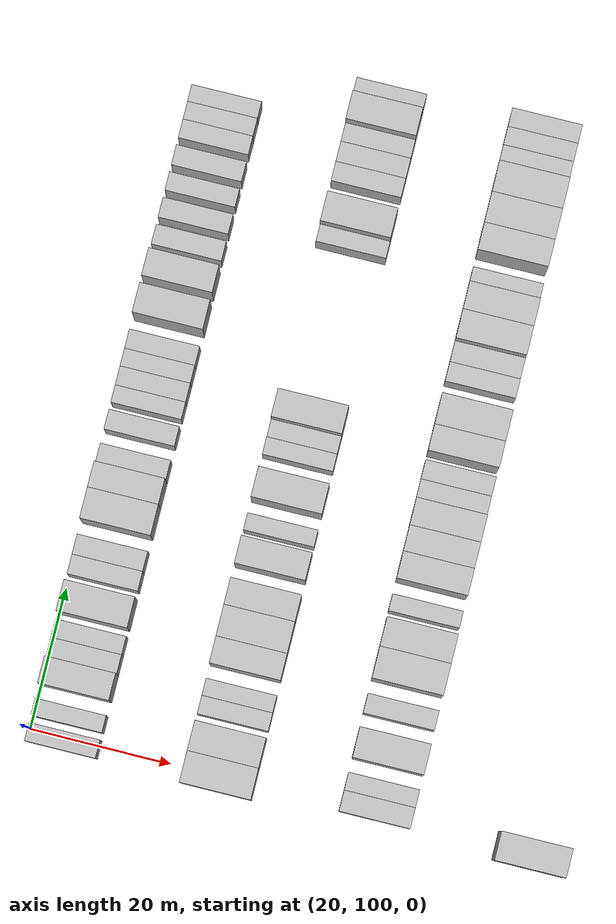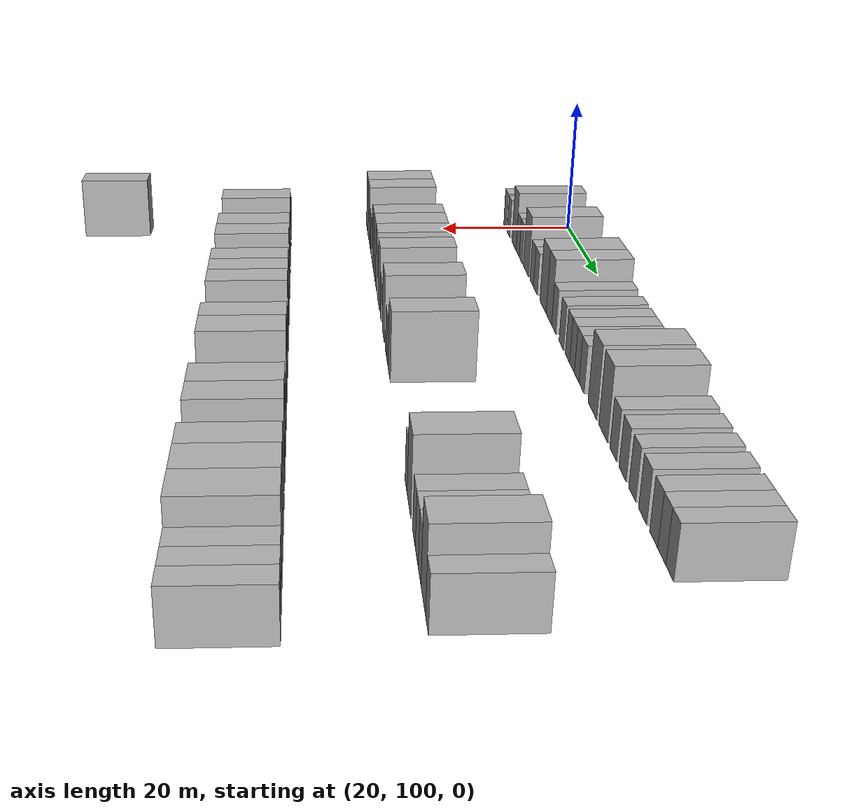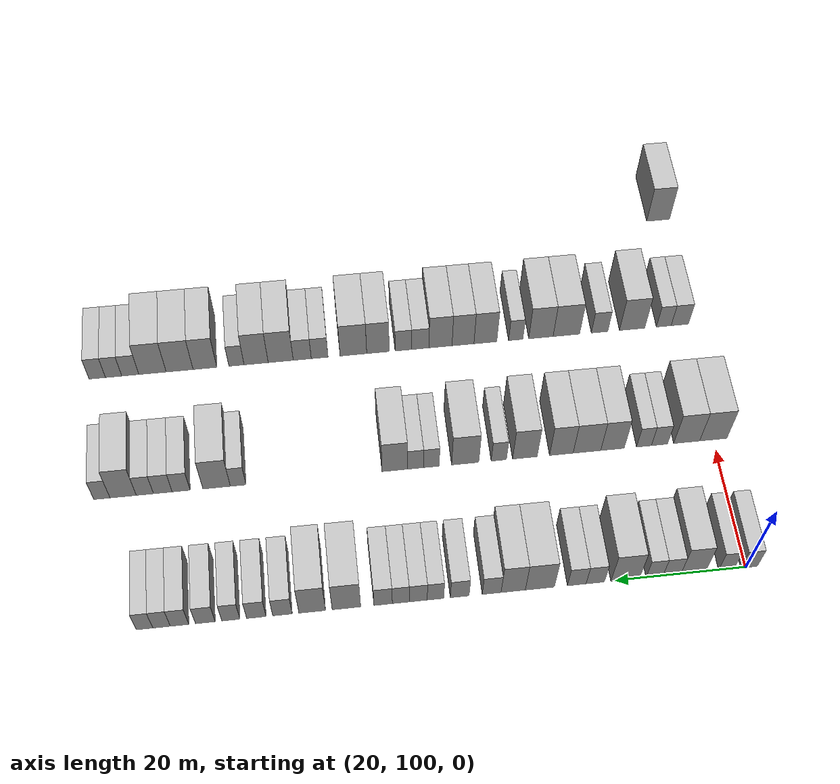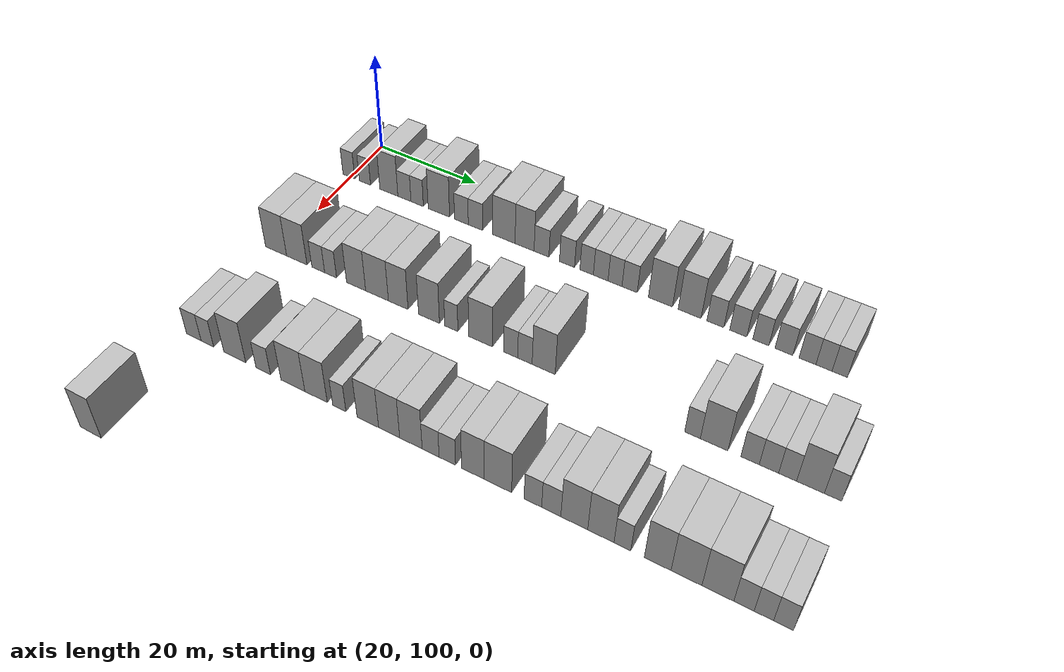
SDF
<sdf version="1.6">
 <world name="default">
  <model name="building_115">
   <static>1</static>
   <pose>25.0000 99.4900 0 0.000000 0.000000 0.000000</pose>
   <link name="link">
    <pose>0 0 3.00 0 0 0</pose>
    <collision name="collision"><geometry><box><size>10.0000 2.5770 6.0000</size></box></geometry></collision>
    <visual name="visual">
     <cast_shadows>0</cast_shadows>
     <geometry><box><size>10.0000 2.5770 6.0000</size></box></geometry>
     <material>
      <script>
       <uri>model://HANNAS_wall/materials/scripts</uri>
       <uri>model://HANNAS_wall/materials/textures</uri>
       <name>vrc/HANNAS_wall</name>
      </script>
     </material>
    </visual>
   </link>
  </model>
  <model name="building_116">
   <static>1</static>
   <pose>25.0000 102.9895 0 0.000000 0.000000 0.000000</pose>
   <link name="link">
    <pose>0 0 3.00 0 0 0</pose>
    <collision name="collision"><geometry><box><size>10.0000 2.4219 6.0000</size></box></geometry></collision>
    <visual name="visual">
     <cast_shadows>0</cast_shadows>
     <geometry><box><size>10.0000 2.4219 6.0000</size></box></geometry>
     <material>
      <script>
       <uri>model://HANNAS_wall/materials/scripts</uri>
       <uri>model://HANNAS_wall/materials/textures</uri>
       <name>vrc/HANNAS_wall</name>
      </script>
     </material>
    </visual>
   </link>
  </model>
  <model name="building_117">
   <static>1</static>
   <pose>25.0000 108.1114 0 0.000000 0.000000 0.000000</pose>
   <link name="link">
    <pose>0 0 4.50 0 0 0</pose>
    <collision name="collision"><geometry><box><size>10.0000 3.8219 9.0000</size></box></geometry></collision>
    <visual name="visual">
     <cast_shadows>0</cast_shadows>
     <geometry><box><size>10.0000 3.8219 9.0000</size></box></geometry>
     <material>
      <script>
       <uri>model://HANNAS_wall/materials/scripts</uri>
       <uri>model://HANNAS_wall/materials/textures</uri>
       <name>vrc/HANNAS_wall</name>
      </script>
     </material>
    </visual>
   </link>
  </model>
  <model name="building_118">
   <static>1</static>
   <pose>25.0000 111.3987 0 0.000000 0.000000 0.000000</pose>
   <link name="link">
    <pose>0 0 3.00 0 0 0</pose>
    <collision name="collision"><geometry><box><size>10.0000 2.7526 6.0000</size></box></geometry></collision>
    <visual name="visual">
     <cast_shadows>0</cast_shadows>
     <geometry><box><size>10.0000 2.7526 6.0000</size></box></geometry>
     <material>
      <script>
       <uri>model://HANNAS_wall/materials/scripts</uri>
       <uri>model://HANNAS_wall/materials/textures</uri>
       <name>vrc/HANNAS_wall</name>
      </script>
     </material>
    </visual>
   </link>
  </model>
  <model name="building_119">
   <static>1</static>
   <pose>25.0000 114.0703 0 0.000000 0.000000 0.000000</pose>
   <link name="link">
    <pose>0 0 3.00 0 0 0</pose>
    <collision name="collision"><geometry><box><size>10.0000 2.5907 6.0000</size></box></geometry></collision>
    <visual name="visual">
     <cast_shadows>0</cast_shadows>
     <geometry><box><size>10.0000 2.5907 6.0000</size></box></geometry>
     <material>
      <script>
       <uri>model://HANNAS_wall/materials/scripts</uri>
       <uri>model://HANNAS_wall/materials/textures</uri>
       <name>vrc/HANNAS_wall</name>
      </script>
     </material>
    </visual>
   </link>
  </model>
  <model name="building_120">
   <static>1</static>
   <pose>25.0000 118.5576 0 0.000000 0.000000 0.000000</pose>
   <link name="link">
    <pose>0 0 4.50 0 0 0</pose>
    <collision name="collision"><geometry><box><size>10.0000 4.3837 9.0000</size></box></geometry></collision>
    <visual name="visual">
     <cast_shadows>0</cast_shadows>
     <geometry><box><size>10.0000 4.3837 9.0000</size></box></geometry>
     <material>
      <script>
       <uri>model://HANNAS_wall/materials/scripts</uri>
       <uri>model://HANNAS_wall/materials/textures</uri>
       <name>vrc/HANNAS_wall</name>
      </script>
     </material>
    </visual>
   </link>
  </model>
  <model name="building_121">
   <static>1</static>
   <pose>25.0000 123.1432 0 0.000000 0.000000 0.000000</pose>
   <link name="link">
    <pose>0 0 3.00 0 0 0</pose>
    <collision name="collision"><geometry><box><size>10.0000 2.7875 6.0000</size></box></geometry></collision>
    <visual name="visual">
     <cast_shadows>0</cast_shadows>
     <geometry><box><size>10.0000 2.7875 6.0000</size></box></geometry>
     <material>
      <script>
       <uri>model://HANNAS_wall/materials/scripts</uri>
       <uri>model://HANNAS_wall/materials/textures</uri>
       <name>vrc/HANNAS_wall</name>
      </script>
     </material>
    </visual>
   </link>
  </model>
  <model name="building_122">
   <static>1</static>
   <pose>25.0000 125.9622 0 0.000000 0.000000 0.000000</pose>
   <link name="link">
    <pose>0 0 3.00 0 0 0</pose>
    <collision name="collision"><geometry><box><size>10.0000 2.8505 6.0000</size></box></geometry></collision>
    <visual name="visual">
     <cast_shadows>0</cast_shadows>
     <geometry><box><size>10.0000 2.8505 6.0000</size></box></geometry>
     <material>
      <script>
       <uri>model://HANNAS_wall/materials/scripts</uri>
       <uri>model://HANNAS_wall/materials/textures</uri>
       <name>vrc/HANNAS_wall</name>
      </script>
     </material>
    </visual>
   </link>
  </model>
  <model name="building_123">
   <static>1</static>
   <pose>25.0000 131.5887 0 0.000000 0.000000 0.000000</pose>
   <link name="link">
    <pose>0 0 4.50 0 0 0</pose>
    <collision name="collision"><geometry><box><size>10.0000 4.4026 9.0000</size></box></geometry></collision>
    <visual name="visual">
     <cast_shadows>0</cast_shadows>
     <geometry><box><size>10.0000 4.4026 9.0000</size></box></geometry>
     <material>
      <script>
       <uri>model://HANNAS_wall/materials/scripts</uri>
       <uri>model://HANNAS_wall/materials/textures</uri>
       <name>vrc/HANNAS_wall</name>
      </script>
     </material>
    </visual>
   </link>
  </model>
  <model name="building_124">
   <static>1</static>
   <pose>25.0000 135.6334 0 0.000000 0.000000 0.000000</pose>
   <link name="link">
    <pose>0 0 4.50 0 0 0</pose>
    <collision name="collision"><geometry><box><size>10.0000 3.6868 9.0000</size></box></geometry></collision>
    <visual name="visual">
     <cast_shadows>0</cast_shadows>
     <geometry><box><size>10.0000 3.6868 9.0000</size></box></geometry>
     <material>
      <script>
       <uri>model://HANNAS_wall/materials/scripts</uri>
       <uri>model://HANNAS_wall/materials/textures</uri>
       <name>vrc/HANNAS_wall</name>
      </script>
     </material>
    </visual>
   </link>
  </model>
  <model name="building_125">
   <static>1</static>
   <pose>25.0000 138.8956 0 0.000000 0.000000 0.000000</pose>
   <link name="link">
    <pose>0 0 3.00 0 0 0</pose>
    <collision name="collision"><geometry><box><size>10.0000 2.8374 6.0000</size></box></geometry></collision>
    <visual name="visual">
     <cast_shadows>0</cast_shadows>
     <geometry><box><size>10.0000 2.8374 6.0000</size></box></geometry>
     <material>
      <script>
       <uri>model://HANNAS_wall/materials/scripts</uri>
       <uri>model://HANNAS_wall/materials/textures</uri>
       <name>vrc/HANNAS_wall</name>
      </script>
     </material>
    </visual>
   </link>
  </model>
  <model name="building_126">
   <static>1</static>
   <pose>25.0000 143.7301 0 0.000000 0.000000 0.000000</pose>
   <link name="link">
    <pose>0 0 3.00 0 0 0</pose>
    <collision name="collision"><geometry><box><size>10.0000 2.8317 6.0000</size></box></geometry></collision>
    <visual name="visual">
     <cast_shadows>0</cast_shadows>
     <geometry><box><size>10.0000 2.8317 6.0000</size></box></geometry>
     <material>
      <script>
       <uri>model://HANNAS_wall/materials/scripts</uri>
       <uri>model://HANNAS_wall/materials/textures</uri>
       <name>vrc/HANNAS_wall</name>
      </script>
     </material>
    </visual>
   </link>
  </model>
  <model name="building_127">
   <static>1</static>
   <pose>25.0000 147.3923 0 0.000000 0.000000 0.000000</pose>
   <link name="link">
    <pose>0 0 3.00 0 0 0</pose>
    <collision name="collision"><geometry><box><size>10.0000 2.4927 6.0000</size></box></geometry></collision>
    <visual name="visual">
     <cast_shadows>0</cast_shadows>
     <geometry><box><size>10.0000 2.4927 6.0000</size></box></geometry>
     <material>
      <script>
       <uri>model://HANNAS_wall/materials/scripts</uri>
       <uri>model://HANNAS_wall/materials/textures</uri>
       <name>vrc/HANNAS_wall</name>
      </script>
     </material>
    </visual>
   </link>
  </model>
  <model name="building_128">
   <static>1</static>
   <pose>25.0000 149.9853 0 0.000000 0.000000 0.000000</pose>
   <link name="link">
    <pose>0 0 3.00 0 0 0</pose>
    <collision name="collision"><geometry><box><size>10.0000 2.6934 6.0000</size></box></geometry></collision>
    <visual name="visual">
     <cast_shadows>0</cast_shadows>
     <geometry><box><size>10.0000 2.6934 6.0000</size></box></geometry>
     <material>
      <script>
       <uri>model://HANNAS_wall/materials/scripts</uri>
       <uri>model://HANNAS_wall/materials/textures</uri>
       <name>vrc/HANNAS_wall</name>
      </script>
     </material>
    </visual>
   </link>
  </model>
  <model name="building_129">
   <static>1</static>
   <pose>25.0000 152.6052 0 0.000000 0.000000 0.000000</pose>
   <link name="link">
    <pose>0 0 3.00 0 0 0</pose>
    <collision name="collision"><geometry><box><size>10.0000 2.5463 6.0000</size></box></geometry></collision>
    <visual name="visual">
     <cast_shadows>0</cast_shadows>
     <geometry><box><size>10.0000 2.5463 6.0000</size></box></geometry>
     <material>
      <script>
       <uri>model://HANNAS_wall/materials/scripts</uri>
       <uri>model://HANNAS_wall/materials/textures</uri>
       <name>vrc/HANNAS_wall</name>
      </script>
     </material>
    </visual>
   </link>
  </model>
  <model name="building_130">
   <static>1</static>
   <pose>25.0000 155.2525 0 0.000000 0.000000 0.000000</pose>
   <link name="link">
    <pose>0 0 3.00 0 0 0</pose>
    <collision name="collision"><geometry><box><size>10.0000 2.7482 6.0000</size></box></geometry></collision>
    <visual name="visual">
     <cast_shadows>0</cast_shadows>
     <geometry><box><size>10.0000 2.7482 6.0000</size></box></geometry>
     <material>
      <script>
       <uri>model://HANNAS_wall/materials/scripts</uri>
       <uri>model://HANNAS_wall/materials/textures</uri>
       <name>vrc/HANNAS_wall</name>
      </script>
     </material>
    </visual>
   </link>
  </model>
  <model name="building_131">
   <static>1</static>
   <pose>25.0000 160.7545 0 0.000000 0.000000 0.000000</pose>
   <link name="link">
    <pose>0 0 4.50 0 0 0</pose>
    <collision name="collision"><geometry><box><size>10.0000 4.2560 9.0000</size></box></geometry></collision>
    <visual name="visual">
     <cast_shadows>0</cast_shadows>
     <geometry><box><size>10.0000 4.2560 9.0000</size></box></geometry>
     <material>
      <script>
       <uri>model://HANNAS_wall/materials/scripts</uri>
       <uri>model://HANNAS_wall/materials/textures</uri>
       <name>vrc/HANNAS_wall</name>
      </script>
     </material>
    </visual>
   </link>
  </model>
  <model name="building_132">
   <static>1</static>
   <pose>25.0000 165.8674 0 0.000000 0.000000 0.000000</pose>
   <link name="link">
    <pose>0 0 4.50 0 0 0</pose>
    <collision name="collision"><geometry><box><size>10.0000 3.9698 9.0000</size></box></geometry></collision>
    <visual name="visual">
     <cast_shadows>0</cast_shadows>
     <geometry><box><size>10.0000 3.9698 9.0000</size></box></geometry>
     <material>
      <script>
       <uri>model://HANNAS_wall/materials/scripts</uri>
       <uri>model://HANNAS_wall/materials/textures</uri>
       <name>vrc/HANNAS_wall</name>
      </script>
     </material>
    </visual>
   </link>
  </model>
  <model name="building_133">
   <static>1</static>
   <pose>25.0000 170.2946 0 0.000000 0.000000 0.000000</pose>
   <link name="link">
    <pose>0 0 3.00 0 0 0</pose>
    <collision name="collision"><geometry><box><size>10.0000 2.8846 6.0000</size></box></geometry></collision>
    <visual name="visual">
     <cast_shadows>0</cast_shadows>
     <geometry><box><size>10.0000 2.8846 6.0000</size></box></geometry>
     <material>
      <script>
       <uri>model://HANNAS_wall/materials/scripts</uri>
       <uri>model://HANNAS_wall/materials/textures</uri>
       <name>vrc/HANNAS_wall</name>
      </script>
     </material>
    </visual>
   </link>
  </model>
  <model name="building_134">
   <static>1</static>
   <pose>25.0000 174.1765 0 0.000000 0.000000 0.000000</pose>
   <link name="link">
    <pose>0 0 3.00 0 0 0</pose>
    <collision name="collision"><geometry><box><size>10.0000 2.8790 6.0000</size></box></geometry></collision>
    <visual name="visual">
     <cast_shadows>0</cast_shadows>
     <geometry><box><size>10.0000 2.8790 6.0000</size></box></geometry>
     <material>
      <script>
       <uri>model://HANNAS_wall/materials/scripts</uri>
       <uri>model://HANNAS_wall/materials/textures</uri>
       <name>vrc/HANNAS_wall</name>
      </script>
     </material>
    </visual>
   </link>
  </model>
  <model name="building_135">
   <static>1</static>
   <pose>25.0000 177.9508 0 0.000000 0.000000 0.000000</pose>
   <link name="link">
    <pose>0 0 3.00 0 0 0</pose>
    <collision name="collision"><geometry><box><size>10.0000 2.6697 6.0000</size></box></geometry></collision>
    <visual name="visual">
     <cast_shadows>0</cast_shadows>
     <geometry><box><size>10.0000 2.6697 6.0000</size></box></geometry>
     <material>
      <script>
       <uri>model://HANNAS_wall/materials/scripts</uri>
       <uri>model://HANNAS_wall/materials/textures</uri>
       <name>vrc/HANNAS_wall</name>
      </script>
     </material>
    </visual>
   </link>
  </model>
  <model name="building_136">
   <static>1</static>
   <pose>25.0000 181.7405 0 0.000000 0.000000 0.000000</pose>
   <link name="link">
    <pose>0 0 3.00 0 0 0</pose>
    <collision name="collision"><geometry><box><size>10.0000 2.9097 6.0000</size></box></geometry></collision>
    <visual name="visual">
     <cast_shadows>0</cast_shadows>
     <geometry><box><size>10.0000 2.9097 6.0000</size></box></geometry>
     <material>
      <script>
       <uri>model://HANNAS_wall/materials/scripts</uri>
       <uri>model://HANNAS_wall/materials/textures</uri>
       <name>vrc/HANNAS_wall</name>
      </script>
     </material>
    </visual>
   </link>
  </model>
  <model name="building_137">
   <static>1</static>
   <pose>25.0000 185.5532 0 0.000000 0.000000 0.000000</pose>
   <link name="link">
    <pose>0 0 3.00 0 0 0</pose>
    <collision name="collision"><geometry><box><size>10.0000 2.7157 6.0000</size></box></geometry></collision>
    <visual name="visual">
     <cast_shadows>0</cast_shadows>
     <geometry><box><size>10.0000 2.7157 6.0000</size></box></geometry>
     <material>
      <script>
       <uri>model://HANNAS_wall/materials/scripts</uri>
       <uri>model://HANNAS_wall/materials/textures</uri>
       <name>vrc/HANNAS_wall</name>
      </script>
     </material>
    </visual>
   </link>
  </model>
  <model name="building_138">
   <static>1</static>
   <pose>25.0000 188.1974 0 0.000000 0.000000 0.000000</pose>
   <link name="link">
    <pose>0 0 3.00 0 0 0</pose>
    <collision name="collision"><geometry><box><size>10.0000 2.5727 6.0000</size></box></geometry></collision>
    <visual name="visual">
     <cast_shadows>0</cast_shadows>
     <geometry><box><size>10.0000 2.5727 6.0000</size></box></geometry>
     <material>
      <script>
       <uri>model://HANNAS_wall/materials/scripts</uri>
       <uri>model://HANNAS_wall/materials/textures</uri>
       <name>vrc/HANNAS_wall</name>
      </script>
     </material>
    </visual>
   </link>
  </model>
  <model name="building_139">
   <static>1</static>
   <pose>25.0000 190.7011 0 0.000000 0.000000 0.000000</pose>
   <link name="link">
    <pose>0 0 3.00 0 0 0</pose>
    <collision name="collision"><geometry><box><size>10.0000 2.4348 6.0000</size></box></geometry></collision>
    <visual name="visual">
     <cast_shadows>0</cast_shadows>
     <geometry><box><size>10.0000 2.4348 6.0000</size></box></geometry>
     <material>
      <script>
       <uri>model://HANNAS_wall/materials/scripts</uri>
       <uri>model://HANNAS_wall/materials/textures</uri>
       <name>vrc/HANNAS_wall</name>
      </script>
     </material>
    </visual>
   </link>
  </model>
  <model name="building_303">
   <static>1</static>
   <pose>47.0000 99.9964 0 0.000000 0.000000 0.000000</pose>
   <link name="link">
    <pose>0 0 4.50 0 0 0</pose>
    <collision name="collision"><geometry><box><size>10.0000 4.4268 9.0000</size></box></geometry></collision>
    <visual name="visual">
     <cast_shadows>0</cast_shadows>
     <geometry><box><size>10.0000 4.4268 9.0000</size></box></geometry>
     <material>
      <script>
       <uri>model://HANNAS_wall/materials/scripts</uri>
       <uri>model://HANNAS_wall/materials/textures</uri>
       <name>vrc/HANNAS_wall</name>
      </script>
     </material>
    </visual>
   </link>
  </model>
  <model name="building_304">
   <static>1</static>
   <pose>47.0000 104.3264 0 0.000000 0.000000 0.000000</pose>
   <link name="link">
    <pose>0 0 4.50 0 0 0</pose>
    <collision name="collision"><geometry><box><size>10.0000 4.2334 9.0000</size></box></geometry></collision>
    <visual name="visual">
     <cast_shadows>0</cast_shadows>
     <geometry><box><size>10.0000 4.2334 9.0000</size></box></geometry>
     <material>
      <script>
       <uri>model://HANNAS_wall/materials/scripts</uri>
       <uri>model://HANNAS_wall/materials/textures</uri>
       <name>vrc/HANNAS_wall</name>
      </script>
     </material>
    </visual>
   </link>
  </model>
  <model name="building_305">
   <static>1</static>
   <pose>47.0000 108.7464 0 0.000000 0.000000 0.000000</pose>
   <link name="link">
    <pose>0 0 3.00 0 0 0</pose>
    <collision name="collision"><geometry><box><size>10.0000 2.6066 6.0000</size></box></geometry></collision>
    <visual name="visual">
     <cast_shadows>0</cast_shadows>
     <geometry><box><size>10.0000 2.6066 6.0000</size></box></geometry>
     <material>
      <script>
       <uri>model://HANNAS_wall/materials/scripts</uri>
       <uri>model://HANNAS_wall/materials/textures</uri>
       <name>vrc/HANNAS_wall</name>
      </script>
     </material>
    </visual>
   </link>
  </model>
  <model name="building_306">
   <static>1</static>
   <pose>47.0000 111.2604 0 0.000000 0.000000 0.000000</pose>
   <link name="link">
    <pose>0 0 3.00 0 0 0</pose>
    <collision name="collision"><geometry><box><size>10.0000 2.4214 6.0000</size></box></geometry></collision>
    <visual name="visual">
     <cast_shadows>0</cast_shadows>
     <geometry><box><size>10.0000 2.4214 6.0000</size></box></geometry>
     <material>
      <script>
       <uri>model://HANNAS_wall/materials/scripts</uri>
       <uri>model://HANNAS_wall/materials/textures</uri>
       <name>vrc/HANNAS_wall</name>
      </script>
     </material>
    </visual>
   </link>
  </model>
  <model name="building_307">
   <static>1</static>
   <pose>47.0000 116.3655 0 0.000000 0.000000 0.000000</pose>
   <link name="link">
    <pose>0 0 4.50 0 0 0</pose>
    <collision name="collision"><geometry><box><size>10.0000 3.7887 9.0000</size></box></geometry></collision>
    <visual name="visual">
     <cast_shadows>0</cast_shadows>
     <geometry><box><size>10.0000 3.7887 9.0000</size></box></geometry>
     <material>
      <script>
       <uri>model://HANNAS_wall/materials/scripts</uri>
       <uri>model://HANNAS_wall/materials/textures</uri>
       <name>vrc/HANNAS_wall</name>
      </script>
     </material>
    </visual>
   </link>
  </model>
  <model name="building_308">
   <static>1</static>
   <pose>47.0000 120.4870 0 0.000000 0.000000 0.000000</pose>
   <link name="link">
    <pose>0 0 4.50 0 0 0</pose>
    <collision name="collision"><geometry><box><size>10.0000 4.4542 9.0000</size></box></geometry></collision>
    <visual name="visual">
     <cast_shadows>0</cast_shadows>
     <geometry><box><size>10.0000 4.4542 9.0000</size></box></geometry>
     <material>
      <script>
       <uri>model://HANNAS_wall/materials/scripts</uri>
       <uri>model://HANNAS_wall/materials/textures</uri>
       <name>vrc/HANNAS_wall</name>
      </script>
     </material>
    </visual>
   </link>
  </model>
  <model name="building_309">
   <static>1</static>
   <pose>47.0000 124.6100 0 0.000000 0.000000 0.000000</pose>
   <link name="link">
    <pose>0 0 4.50 0 0 0</pose>
    <collision name="collision"><geometry><box><size>10.0000 3.7918 9.0000</size></box></geometry></collision>
    <visual name="visual">
     <cast_shadows>0</cast_shadows>
     <geometry><box><size>10.0000 3.7918 9.0000</size></box></geometry>
     <material>
      <script>
       <uri>model://HANNAS_wall/materials/scripts</uri>
       <uri>model://HANNAS_wall/materials/textures</uri>
       <name>vrc/HANNAS_wall</name>
      </script>
     </material>
    </visual>
   </link>
  </model>
  <model name="building_310">
   <static>1</static>
   <pose>47.0000 130.4758 0 0.000000 0.000000 0.000000</pose>
   <link name="link">
    <pose>0 0 4.50 0 0 0</pose>
    <collision name="collision"><geometry><box><size>10.0000 3.9399 9.0000</size></box></geometry></collision>
    <visual name="visual">
     <cast_shadows>0</cast_shadows>
     <geometry><box><size>10.0000 3.9399 9.0000</size></box></geometry>
     <material>
      <script>
       <uri>model://HANNAS_wall/materials/scripts</uri>
       <uri>model://HANNAS_wall/materials/textures</uri>
       <name>vrc/HANNAS_wall</name>
      </script>
     </material>
    </visual>
   </link>
  </model>
  <model name="building_311">
   <static>1</static>
   <pose>47.0000 134.6577 0 0.000000 0.000000 0.000000</pose>
   <link name="link">
    <pose>0 0 3.00 0 0 0</pose>
    <collision name="collision"><geometry><box><size>10.0000 2.4238 6.0000</size></box></geometry></collision>
    <visual name="visual">
     <cast_shadows>0</cast_shadows>
     <geometry><box><size>10.0000 2.4238 6.0000</size></box></geometry>
     <material>
      <script>
       <uri>model://HANNAS_wall/materials/scripts</uri>
       <uri>model://HANNAS_wall/materials/textures</uri>
       <name>vrc/HANNAS_wall</name>
      </script>
     </material>
    </visual>
   </link>
  </model>
  <model name="building_312">
   <static>1</static>
   <pose>47.0000 140.0307 0 0.000000 0.000000 0.000000</pose>
   <link name="link">
    <pose>0 0 4.50 0 0 0</pose>
    <collision name="collision"><geometry><box><size>10.0000 4.3221 9.0000</size></box></geometry></collision>
    <visual name="visual">
     <cast_shadows>0</cast_shadows>
     <geometry><box><size>10.0000 4.3221 9.0000</size></box></geometry>
     <material>
      <script>
       <uri>model://HANNAS_wall/materials/scripts</uri>
       <uri>model://HANNAS_wall/materials/textures</uri>
       <name>vrc/HANNAS_wall</name>
      </script>
     </material>
    </visual>
   </link>
  </model>
  <model name="building_313">
   <static>1</static>
   <pose>47.0000 145.4400 0 0.000000 0.000000 0.000000</pose>
   <link name="link">
    <pose>0 0 3.00 0 0 0</pose>
    <collision name="collision"><geometry><box><size>10.0000 2.4965 6.0000</size></box></geometry></collision>
    <visual name="visual">
     <cast_shadows>0</cast_shadows>
     <geometry><box><size>10.0000 2.4965 6.0000</size></box></geometry>
     <material>
      <script>
       <uri>model://HANNAS_wall/materials/scripts</uri>
       <uri>model://HANNAS_wall/materials/textures</uri>
       <name>vrc/HANNAS_wall</name>
      </script>
     </material>
    </visual>
   </link>
  </model>
  <model name="building_314">
   <static>1</static>
   <pose>47.0000 147.9604 0 0.000000 0.000000 0.000000</pose>
   <link name="link">
    <pose>0 0 3.00 0 0 0</pose>
    <collision name="collision"><geometry><box><size>10.0000 2.5441 6.0000</size></box></geometry></collision>
    <visual name="visual">
     <cast_shadows>0</cast_shadows>
     <geometry><box><size>10.0000 2.5441 6.0000</size></box></geometry>
     <material>
      <script>
       <uri>model://HANNAS_wall/materials/scripts</uri>
       <uri>model://HANNAS_wall/materials/textures</uri>
       <name>vrc/HANNAS_wall</name>
      </script>
     </material>
    </visual>
   </link>
  </model>
  <model name="building_315">
   <static>1</static>
   <pose>47.0000 151.2434 0 0.000000 0.000000 0.000000</pose>
   <link name="link">
    <pose>0 0 4.50 0 0 0</pose>
    <collision name="collision"><geometry><box><size>10.0000 4.0220 9.0000</size></box></geometry></collision>
    <visual name="visual">
     <cast_shadows>0</cast_shadows>
     <geometry><box><size>10.0000 4.0220 9.0000</size></box></geometry>
     <material>
      <script>
       <uri>model://HANNAS_wall/materials/scripts</uri>
       <uri>model://HANNAS_wall/materials/textures</uri>
       <name>vrc/HANNAS_wall</name>
      </script>
     </material>
    </visual>
   </link>
  </model>
  <model name="building_316">
   <static>1</static>
   <pose>47.0000 175.9476 0 0.000000 0.000000 0.000000</pose>
   <link name="link">
    <pose>0 0 3.00 0 0 0</pose>
    <collision name="collision"><geometry><box><size>10.0000 2.4621 6.0000</size></box></geometry></collision>
    <visual name="visual">
     <cast_shadows>0</cast_shadows>
     <geometry><box><size>10.0000 2.4621 6.0000</size></box></geometry>
     <material>
      <script>
       <uri>model://HANNAS_wall/materials/scripts</uri>
       <uri>model://HANNAS_wall/materials/textures</uri>
       <name>vrc/HANNAS_wall</name>
      </script>
     </material>
    </visual>
   </link>
  </model>
  <model name="building_317">
   <static>1</static>
   <pose>47.0000 179.3189 0 0.000000 0.000000 0.000000</pose>
   <link name="link">
    <pose>0 0 4.50 0 0 0</pose>
    <collision name="collision"><geometry><box><size>10.0000 4.2807 9.0000</size></box></geometry></collision>
    <visual name="visual">
     <cast_shadows>0</cast_shadows>
     <geometry><box><size>10.0000 4.2807 9.0000</size></box></geometry>
     <material>
      <script>
       <uri>model://HANNAS_wall/materials/scripts</uri>
       <uri>model://HANNAS_wall/materials/textures</uri>
       <name>vrc/HANNAS_wall</name>
      </script>
     </material>
    </visual>
   </link>
  </model>
  <model name="building_318">
   <static>1</static>
   <pose>47.0000 184.8585 0 0.000000 0.000000 0.000000</pose>
   <link name="link">
    <pose>0 0 3.00 0 0 0</pose>
    <collision name="collision"><geometry><box><size>10.0000 2.7985 6.0000</size></box></geometry></collision>
    <visual name="visual">
     <cast_shadows>0</cast_shadows>
     <geometry><box><size>10.0000 2.7985 6.0000</size></box></geometry>
     <material>
      <script>
       <uri>model://HANNAS_wall/materials/scripts</uri>
       <uri>model://HANNAS_wall/materials/textures</uri>
       <name>vrc/HANNAS_wall</name>
      </script>
     </material>
    </visual>
   </link>
  </model>
  <model name="building_319">
   <static>1</static>
   <pose>47.0000 187.7130 0 0.000000 0.000000 0.000000</pose>
   <link name="link">
    <pose>0 0 3.00 0 0 0</pose>
    <collision name="collision"><geometry><box><size>10.0000 2.9104 6.0000</size></box></geometry></collision>
    <visual name="visual">
     <cast_shadows>0</cast_shadows>
     <geometry><box><size>10.0000 2.9104 6.0000</size></box></geometry>
     <material>
      <script>
       <uri>model://HANNAS_wall/materials/scripts</uri>
       <uri>model://HANNAS_wall/materials/textures</uri>
       <name>vrc/HANNAS_wall</name>
      </script>
     </material>
    </visual>
   </link>
  </model>
  <model name="building_320">
   <static>1</static>
   <pose>47.0000 190.5064 0 0.000000 0.000000 0.000000</pose>
   <link name="link">
    <pose>0 0 3.00 0 0 0</pose>
    <collision name="collision"><geometry><box><size>10.0000 2.6764 6.0000</size></box></geometry></collision>
    <visual name="visual">
     <cast_shadows>0</cast_shadows>
     <geometry><box><size>10.0000 2.6764 6.0000</size></box></geometry>
     <material>
      <script>
       <uri>model://HANNAS_wall/materials/scripts</uri>
       <uri>model://HANNAS_wall/materials/textures</uri>
       <name>vrc/HANNAS_wall</name>
      </script>
     </material>
    </visual>
   </link>
  </model>
  <model name="building_321">
   <static>1</static>
   <pose>47.0000 193.8821 0 0.000000 0.000000 0.000000</pose>
   <link name="link">
    <pose>0 0 4.50 0 0 0</pose>
    <collision name="collision"><geometry><box><size>10.0000 4.0749 9.0000</size></box></geometry></collision>
    <visual name="visual">
     <cast_shadows>0</cast_shadows>
     <geometry><box><size>10.0000 4.0749 9.0000</size></box></geometry>
     <material>
      <script>
       <uri>model://HANNAS_wall/materials/scripts</uri>
       <uri>model://HANNAS_wall/materials/textures</uri>
       <name>vrc/HANNAS_wall</name>
      </script>
     </material>
    </visual>
   </link>
  </model>
  <model name="building_322">
   <static>1</static>
   <pose>47.0000 197.1750 0 0.000000 0.000000 0.000000</pose>
   <link name="link">
    <pose>0 0 3.00 0 0 0</pose>
    <collision name="collision"><geometry><box><size>10.0000 2.5109 6.0000</size></box></geometry></collision>
    <visual name="visual">
     <cast_shadows>0</cast_shadows>
     <geometry><box><size>10.0000 2.5109 6.0000</size></box></geometry>
     <material>
      <script>
       <uri>model://HANNAS_wall/materials/scripts</uri>
       <uri>model://HANNAS_wall/materials/textures</uri>
       <name>vrc/HANNAS_wall</name>
      </script>
     </material>
    </visual>
   </link>
  </model>
  <model name="building_493">
   <static>1</static>
   <pose>69.0000 100.7308 0 0.000000 0.000000 0.000000</pose>
   <link name="link">
    <pose>0 0 3.00 0 0 0</pose>
    <collision name="collision"><geometry><box><size>10.0000 2.9533 6.0000</size></box></geometry></collision>
    <visual name="visual">
     <cast_shadows>0</cast_shadows>
     <geometry><box><size>10.0000 2.9533 6.0000</size></box></geometry>
     <material>
      <script>
       <uri>model://HANNAS_wall/materials/scripts</uri>
       <uri>model://HANNAS_wall/materials/textures</uri>
       <name>vrc/HANNAS_wall</name>
      </script>
     </material>
    </visual>
   </link>
  </model>
  <model name="building_494">
   <static>1</static>
   <pose>69.0000 103.4663 0 0.000000 0.000000 0.000000</pose>
   <link name="link">
    <pose>0 0 3.00 0 0 0</pose>
    <collision name="collision"><geometry><box><size>10.0000 2.5176 6.0000</size></box></geometry></collision>
    <visual name="visual">
     <cast_shadows>0</cast_shadows>
     <geometry><box><size>10.0000 2.5176 6.0000</size></box></geometry>
     <material>
      <script>
       <uri>model://HANNAS_wall/materials/scripts</uri>
       <uri>model://HANNAS_wall/materials/textures</uri>
       <name>vrc/HANNAS_wall</name>
      </script>
     </material>
    </visual>
   </link>
  </model>
  <model name="building_495">
   <static>1</static>
   <pose>69.0000 108.8772 0 0.000000 0.000000 0.000000</pose>
   <link name="link">
    <pose>0 0 4.50 0 0 0</pose>
    <collision name="collision"><geometry><box><size>10.0000 4.3043 9.0000</size></box></geometry></collision>
    <visual name="visual">
     <cast_shadows>0</cast_shadows>
     <geometry><box><size>10.0000 4.3043 9.0000</size></box></geometry>
     <material>
      <script>
       <uri>model://HANNAS_wall/materials/scripts</uri>
       <uri>model://HANNAS_wall/materials/textures</uri>
       <name>vrc/HANNAS_wall</name>
      </script>
     </material>
    </visual>
   </link>
  </model>
  <model name="building_496">
   <static>1</static>
   <pose>69.0000 114.4236 0 0.000000 0.000000 0.000000</pose>
   <link name="link">
    <pose>0 0 3.00 0 0 0</pose>
    <collision name="collision"><geometry><box><size>10.0000 2.7885 6.0000</size></box></geometry></collision>
    <visual name="visual">
     <cast_shadows>0</cast_shadows>
     <geometry><box><size>10.0000 2.7885 6.0000</size></box></geometry>
     <material>
      <script>
       <uri>model://HANNAS_wall/materials/scripts</uri>
       <uri>model://HANNAS_wall/materials/textures</uri>
       <name>vrc/HANNAS_wall</name>
      </script>
     </material>
    </visual>
   </link>
  </model>
  <model name="building_497">
   <static>1</static>
   <pose>69.0000 120.0640 0 0.000000 0.000000 0.000000</pose>
   <link name="link">
    <pose>0 0 4.50 0 0 0</pose>
    <collision name="collision"><geometry><box><size>10.0000 4.4924 9.0000</size></box></geometry></collision>
    <visual name="visual">
     <cast_shadows>0</cast_shadows>
     <geometry><box><size>10.0000 4.4924 9.0000</size></box></geometry>
     <material>
      <script>
       <uri>model://HANNAS_wall/materials/scripts</uri>
       <uri>model://HANNAS_wall/materials/textures</uri>
       <name>vrc/HANNAS_wall</name>
      </script>
     </material>
    </visual>
   </link>
  </model>
  <model name="building_498">
   <static>1</static>
   <pose>69.0000 124.3791 0 0.000000 0.000000 0.000000</pose>
   <link name="link">
    <pose>0 0 4.50 0 0 0</pose>
    <collision name="collision"><geometry><box><size>10.0000 4.1379 9.0000</size></box></geometry></collision>
    <visual name="visual">
     <cast_shadows>0</cast_shadows>
     <geometry><box><size>10.0000 4.1379 9.0000</size></box></geometry>
     <material>
      <script>
       <uri>model://HANNAS_wall/materials/scripts</uri>
       <uri>model://HANNAS_wall/materials/textures</uri>
       <name>vrc/HANNAS_wall</name>
      </script>
     </material>
    </visual>
   </link>
  </model>
  <model name="building_499">
   <static>1</static>
   <pose>69.0000 128.6483 0 0.000000 0.000000 0.000000</pose>
   <link name="link">
    <pose>0 0 3.00 0 0 0</pose>
    <collision name="collision"><geometry><box><size>10.0000 2.4006 6.0000</size></box></geometry></collision>
    <visual name="visual">
     <cast_shadows>0</cast_shadows>
     <geometry><box><size>10.0000 2.4006 6.0000</size></box></geometry>
     <material>
      <script>
       <uri>model://HANNAS_wall/materials/scripts</uri>
       <uri>model://HANNAS_wall/materials/textures</uri>
       <name>vrc/HANNAS_wall</name>
      </script>
     </material>
    </visual>
   </link>
  </model>
  <model name="building_500">
   <static>1</static>
   <pose>69.0000 133.7675 0 0.000000 0.000000 0.000000</pose>
   <link name="link">
    <pose>0 0 4.50 0 0 0</pose>
    <collision name="collision"><geometry><box><size>10.0000 3.8378 9.0000</size></box></geometry></collision>
    <visual name="visual">
     <cast_shadows>0</cast_shadows>
     <geometry><box><size>10.0000 3.8378 9.0000</size></box></geometry>
     <material>
      <script>
       <uri>model://HANNAS_wall/materials/scripts</uri>
       <uri>model://HANNAS_wall/materials/textures</uri>
       <name>vrc/HANNAS_wall</name>
      </script>
     </material>
    </visual>
   </link>
  </model>
  <model name="building_501">
   <static>1</static>
   <pose>69.0000 137.5315 0 0.000000 0.000000 0.000000</pose>
   <link name="link">
    <pose>0 0 4.50 0 0 0</pose>
    <collision name="collision"><geometry><box><size>10.0000 3.6901 9.0000</size></box></geometry></collision>
    <visual name="visual">
     <cast_shadows>0</cast_shadows>
     <geometry><box><size>10.0000 3.6901 9.0000</size></box></geometry>
     <material>
      <script>
       <uri>model://HANNAS_wall/materials/scripts</uri>
       <uri>model://HANNAS_wall/materials/textures</uri>
       <name>vrc/HANNAS_wall</name>
      </script>
     </material>
    </visual>
   </link>
  </model>
  <model name="building_502">
   <static>1</static>
   <pose>69.0000 141.3183 0 0.000000 0.000000 0.000000</pose>
   <link name="link">
    <pose>0 0 4.50 0 0 0</pose>
    <collision name="collision"><geometry><box><size>10.0000 3.8835 9.0000</size></box></geometry></collision>
    <visual name="visual">
     <cast_shadows>0</cast_shadows>
     <geometry><box><size>10.0000 3.8835 9.0000</size></box></geometry>
     <material>
      <script>
       <uri>model://HANNAS_wall/materials/scripts</uri>
       <uri>model://HANNAS_wall/materials/textures</uri>
       <name>vrc/HANNAS_wall</name>
      </script>
     </material>
    </visual>
   </link>
  </model>
  <model name="building_503">
   <static>1</static>
   <pose>69.0000 144.7003 0 0.000000 0.000000 0.000000</pose>
   <link name="link">
    <pose>0 0 3.00 0 0 0</pose>
    <collision name="collision"><geometry><box><size>10.0000 2.8805 6.0000</size></box></geometry></collision>
    <visual name="visual">
     <cast_shadows>0</cast_shadows>
     <geometry><box><size>10.0000 2.8805 6.0000</size></box></geometry>
     <material>
      <script>
       <uri>model://HANNAS_wall/materials/scripts</uri>
       <uri>model://HANNAS_wall/materials/textures</uri>
       <name>vrc/HANNAS_wall</name>
      </script>
     </material>
    </visual>
   </link>
  </model>
  <model name="building_504">
   <static>1</static>
   <pose>69.0000 147.5252 0 0.000000 0.000000 0.000000</pose>
   <link name="link">
    <pose>0 0 3.00 0 0 0</pose>
    <collision name="collision"><geometry><box><size>10.0000 2.7695 6.0000</size></box></geometry></collision>
    <visual name="visual">
     <cast_shadows>0</cast_shadows>
     <geometry><box><size>10.0000 2.7695 6.0000</size></box></geometry>
     <material>
      <script>
       <uri>model://HANNAS_wall/materials/scripts</uri>
       <uri>model://HANNAS_wall/materials/textures</uri>
       <name>vrc/HANNAS_wall</name>
      </script>
     </material>
    </visual>
   </link>
  </model>
  <model name="building_505">
   <static>1</static>
   <pose>69.0000 151.7844 0 0.000000 0.000000 0.000000</pose>
   <link name="link">
    <pose>0 0 4.50 0 0 0</pose>
    <collision name="collision"><geometry><box><size>10.0000 3.7488 9.0000</size></box></geometry></collision>
    <visual name="visual">
     <cast_shadows>0</cast_shadows>
     <geometry><box><size>10.0000 3.7488 9.0000</size></box></geometry>
     <material>
      <script>
       <uri>model://HANNAS_wall/materials/scripts</uri>
       <uri>model://HANNAS_wall/materials/textures</uri>
       <name>vrc/HANNAS_wall</name>
      </script>
     </material>
    </visual>
   </link>
  </model>
  <model name="building_506">
   <static>1</static>
   <pose>69.0000 155.8806 0 0.000000 0.000000 0.000000</pose>
   <link name="link">
    <pose>0 0 4.50 0 0 0</pose>
    <collision name="collision"><geometry><box><size>10.0000 4.4435 9.0000</size></box></geometry></collision>
    <visual name="visual">
     <cast_shadows>0</cast_shadows>
     <geometry><box><size>10.0000 4.4435 9.0000</size></box></geometry>
     <material>
      <script>
       <uri>model://HANNAS_wall/materials/scripts</uri>
       <uri>model://HANNAS_wall/materials/textures</uri>
       <name>vrc/HANNAS_wall</name>
      </script>
     </material>
    </visual>
   </link>
  </model>
  <model name="building_507">
   <static>1</static>
   <pose>69.0000 161.4967 0 0.000000 0.000000 0.000000</pose>
   <link name="link">
    <pose>0 0 3.00 0 0 0</pose>
    <collision name="collision"><geometry><box><size>10.0000 2.7888 6.0000</size></box></geometry></collision>
    <visual name="visual">
     <cast_shadows>0</cast_shadows>
     <geometry><box><size>10.0000 2.7888 6.0000</size></box></geometry>
     <material>
      <script>
       <uri>model://HANNAS_wall/materials/scripts</uri>
       <uri>model://HANNAS_wall/materials/textures</uri>
       <name>vrc/HANNAS_wall</name>
      </script>
     </material>
    </visual>
   </link>
  </model>
  <model name="building_508">
   <static>1</static>
   <pose>69.0000 164.3897 0 0.000000 0.000000 0.000000</pose>
   <link name="link">
    <pose>0 0 3.00 0 0 0</pose>
    <collision name="collision"><geometry><box><size>10.0000 2.9972 6.0000</size></box></geometry></collision>
    <visual name="visual">
     <cast_shadows>0</cast_shadows>
     <geometry><box><size>10.0000 2.9972 6.0000</size></box></geometry>
     <material>
      <script>
       <uri>model://HANNAS_wall/materials/scripts</uri>
       <uri>model://HANNAS_wall/materials/textures</uri>
       <name>vrc/HANNAS_wall</name>
      </script>
     </material>
    </visual>
   </link>
  </model>
  <model name="building_509">
   <static>1</static>
   <pose>69.0000 167.9652 0 0.000000 0.000000 0.000000</pose>
   <link name="link">
    <pose>0 0 4.50 0 0 0</pose>
    <collision name="collision"><geometry><box><size>10.0000 4.1539 9.0000</size></box></geometry></collision>
    <visual name="visual">
     <cast_shadows>0</cast_shadows>
     <geometry><box><size>10.0000 4.1539 9.0000</size></box></geometry>
     <material>
      <script>
       <uri>model://HANNAS_wall/materials/scripts</uri>
       <uri>model://HANNAS_wall/materials/textures</uri>
       <name>vrc/HANNAS_wall</name>
      </script>
     </material>
    </visual>
   </link>
  </model>
  <model name="building_510">
   <static>1</static>
   <pose>69.0000 172.0325 0 0.000000 0.000000 0.000000</pose>
   <link name="link">
    <pose>0 0 4.50 0 0 0</pose>
    <collision name="collision"><geometry><box><size>10.0000 3.9806 9.0000</size></box></geometry></collision>
    <visual name="visual">
     <cast_shadows>0</cast_shadows>
     <geometry><box><size>10.0000 3.9806 9.0000</size></box></geometry>
     <material>
      <script>
       <uri>model://HANNAS_wall/materials/scripts</uri>
       <uri>model://HANNAS_wall/materials/textures</uri>
       <name>vrc/HANNAS_wall</name>
      </script>
     </material>
    </visual>
   </link>
  </model>
  <model name="building_511">
   <static>1</static>
   <pose>69.0000 175.2745 0 0.000000 0.000000 0.000000</pose>
   <link name="link">
    <pose>0 0 3.00 0 0 0</pose>
    <collision name="collision"><geometry><box><size>10.0000 2.5035 6.0000</size></box></geometry></collision>
    <visual name="visual">
     <cast_shadows>0</cast_shadows>
     <geometry><box><size>10.0000 2.5035 6.0000</size></box></geometry>
     <material>
      <script>
       <uri>model://HANNAS_wall/materials/scripts</uri>
       <uri>model://HANNAS_wall/materials/textures</uri>
       <name>vrc/HANNAS_wall</name>
      </script>
     </material>
    </visual>
   </link>
  </model>
  <model name="building_512">
   <static>1</static>
   <pose>69.0000 180.4797 0 0.000000 0.000000 0.000000</pose>
   <link name="link">
    <pose>0 0 4.50 0 0 0</pose>
    <collision name="collision"><geometry><box><size>10.0000 3.9068 9.0000</size></box></geometry></collision>
    <visual name="visual">
     <cast_shadows>0</cast_shadows>
     <geometry><box><size>10.0000 3.9068 9.0000</size></box></geometry>
     <material>
      <script>
       <uri>model://HANNAS_wall/materials/scripts</uri>
       <uri>model://HANNAS_wall/materials/textures</uri>
       <name>vrc/HANNAS_wall</name>
      </script>
     </material>
    </visual>
   </link>
  </model>
  <model name="building_513">
   <static>1</static>
   <pose>69.0000 184.6457 0 0.000000 0.000000 0.000000</pose>
   <link name="link">
    <pose>0 0 4.50 0 0 0</pose>
    <collision name="collision"><geometry><box><size>10.0000 4.4251 9.0000</size></box></geometry></collision>
    <visual name="visual">
     <cast_shadows>0</cast_shadows>
     <geometry><box><size>10.0000 4.4251 9.0000</size></box></geometry>
     <material>
      <script>
       <uri>model://HANNAS_wall/materials/scripts</uri>
       <uri>model://HANNAS_wall/materials/textures</uri>
       <name>vrc/HANNAS_wall</name>
      </script>
     </material>
    </visual>
   </link>
  </model>
  <model name="building_514">
   <static>1</static>
   <pose>69.0000 189.0999 0 0.000000 0.000000 0.000000</pose>
   <link name="link">
    <pose>0 0 4.50 0 0 0</pose>
    <collision name="collision"><geometry><box><size>10.0000 4.4833 9.0000</size></box></geometry></collision>
    <visual name="visual">
     <cast_shadows>0</cast_shadows>
     <geometry><box><size>10.0000 4.4833 9.0000</size></box></geometry>
     <material>
      <script>
       <uri>model://HANNAS_wall/materials/scripts</uri>
       <uri>model://HANNAS_wall/materials/textures</uri>
       <name>vrc/HANNAS_wall</name>
      </script>
     </material>
    </visual>
   </link>
  </model>
  <model name="building_515">
   <static>1</static>
   <pose>69.0000 192.7405 0 0.000000 0.000000 0.000000</pose>
   <link name="link">
    <pose>0 0 3.00 0 0 0</pose>
    <collision name="collision"><geometry><box><size>10.0000 2.7977 6.0000</size></box></geometry></collision>
    <visual name="visual">
     <cast_shadows>0</cast_shadows>
     <geometry><box><size>10.0000 2.7977 6.0000</size></box></geometry>
     <material>
      <script>
       <uri>model://HANNAS_wall/materials/scripts</uri>
       <uri>model://HANNAS_wall/materials/textures</uri>
       <name>vrc/HANNAS_wall</name>
      </script>
     </material>
    </visual>
   </link>
  </model>
  <model name="building_516">
   <static>1</static>
   <pose>69.0000 195.4687 0 0.000000 0.000000 0.000000</pose>
   <link name="link">
    <pose>0 0 3.00 0 0 0</pose>
    <collision name="collision"><geometry><box><size>10.0000 2.6586 6.0000</size></box></geometry></collision>
    <visual name="visual">
     <cast_shadows>0</cast_shadows>
     <geometry><box><size>10.0000 2.6586 6.0000</size></box></geometry>
     <material>
      <script>
       <uri>model://HANNAS_wall/materials/scripts</uri>
       <uri>model://HANNAS_wall/materials/textures</uri>
       <name>vrc/HANNAS_wall</name>
      </script>
     </material>
    </visual>
   </link>
  </model>
  <model name="building_517">
   <static>1</static>
   <pose>69.0000 198.1325 0 0.000000 0.000000 0.000000</pose>
   <link name="link">
    <pose>0 0 3.00 0 0 0</pose>
    <collision name="collision"><geometry><box><size>10.0000 2.6691 6.0000</size></box></geometry></collision>
    <visual name="visual">
     <cast_shadows>0</cast_shadows>
     <geometry><box><size>10.0000 2.6691 6.0000</size></box></geometry>
     <material>
      <script>
       <uri>model://HANNAS_wall/materials/scripts</uri>
       <uri>model://HANNAS_wall/materials/textures</uri>
       <name>vrc/HANNAS_wall</name>
      </script>
     </material>
    </visual>
   </link>
  </model>
  <model name="building_688">
   <static>1</static>
   <pose>91.0000 99.8980 0 0.000000 0.000000 0.000000</pose>
   <link name="link">
    <pose>0 0 4.50 0 0 0</pose>
    <collision name="collision"><geometry><box><size>10.0000 4.0868 9.0000</size></box></geometry></collision>
    <visual name="visual">
     <cast_shadows>0</cast_shadows>
     <geometry><box><size>10.0000 4.0868 9.0000</size></box></geometry>
     <material>
      <script>
       <uri>model://HANNAS_wall/materials/scripts</uri>
       <uri>model://HANNAS_wall/materials/textures</uri>
       <name>vrc/HANNAS_wall</name>
      </script>
     </material>
    </visual>
   </link>
  </model>
 </world>
</sdf>
